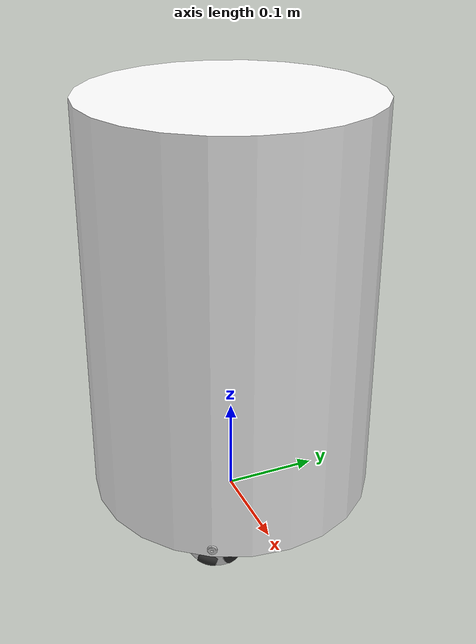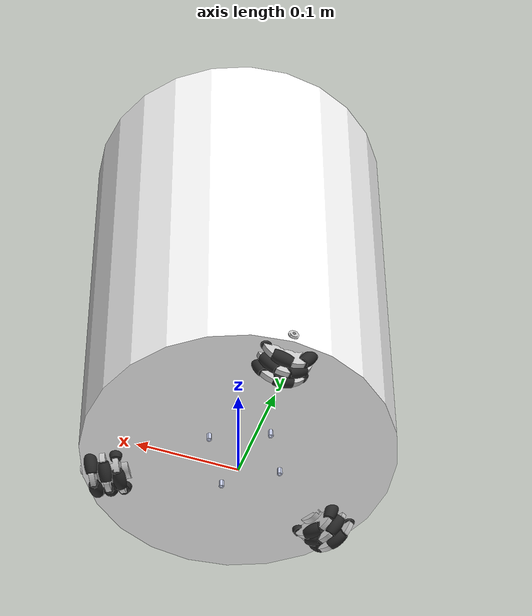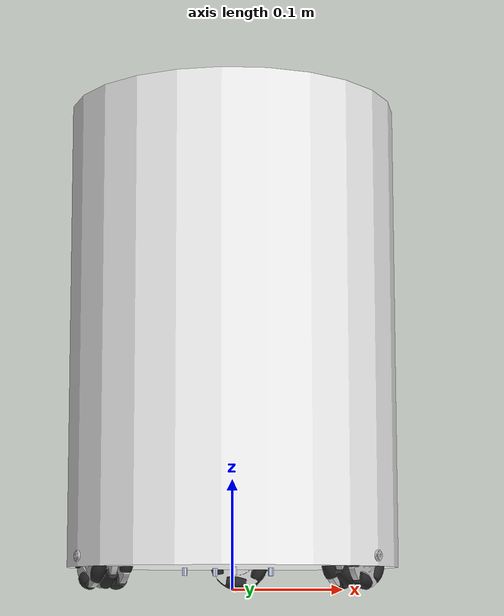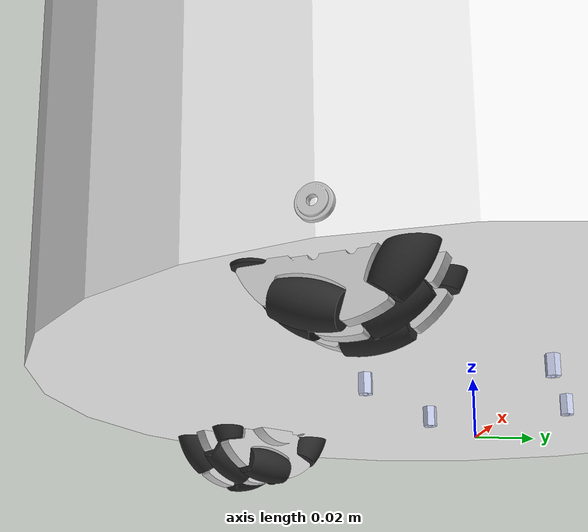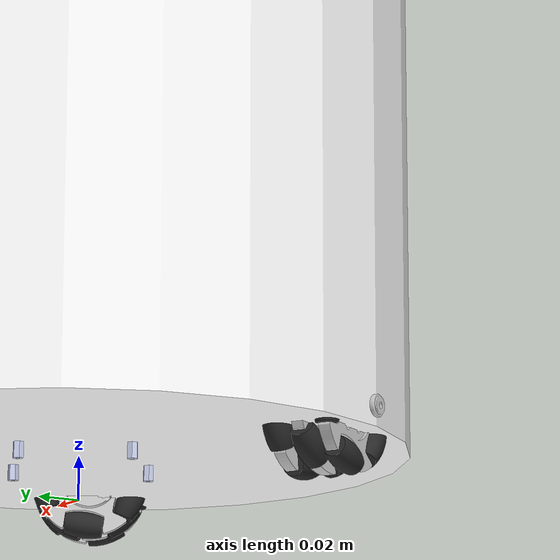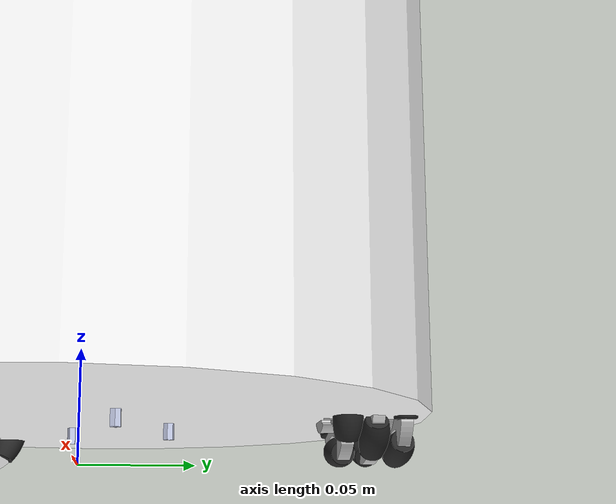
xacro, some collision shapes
<?xml version="1.0"?>
<robot xmlns:xacro="http://www.ros.org/wiki/xacro"  name="robot">

    <!-- Include all the contents. -->
    <xacro:include filename="$(find robot_description)/urdf/meshes/standard_inertia_util.xacro" />
    <xacro:include filename="$(find robot_description)/urdf/HARP2_urdf/holonomic_wheel/wheel.xacro" />

    <xacro:arg name="use_TopicBasedSystem_hardware_interface" default="false"/>
    <xacro:arg name="use_controller" default="false"/>

    <!-- Hhardware interfaces chosen according to whether the robot is simulated or real -->
    <xacro:if value="$(arg use_controller)">
        <xacro:if value="$(arg use_TopicBasedSystem_hardware_interface)">
            <xacro:include filename="$(find robot_controller)/urdf/TopicBasedSystem_hardware_interface.urdf.xacro"/>
        </xacro:if>
        <xacro:unless value="$(arg use_TopicBasedSystem_hardware_interface)">
            <xacro:include filename="$(find robot_controller)/urdf/GazeboSystem_hardware_interface.urdf.xacro"/>
        </xacro:unless>
    </xacro:if>

    <!-- This first link called "base_footprint" is empty -->
    <link name="base_footprint"/>

    <joint name="base_joint" type="fixed">
        <origin xyz="0 0 0" rpy="0 0 0.523599"/>
        <parent link="base_footprint"/>
        <child link="base_link"/>
    </joint>

    <xacro:property name="length" value="0.42235" />
    <xacro:property name="radius" value="0.15" />
    <xacro:property name="mass" value="3.0" />

    <link name="base_link">
        <visual>
            <origin xyz="0 0 0" rpy="0 0 0"/>
            <geometry>
                <mesh filename="file://$(find robot_description)/urdf/HARP2_urdf/meshes/HARP2_body.dae"/>
            </geometry>
            <cast_shadow>false</cast_shadow>
            <material name="robot_base_material">
                <color rgba="1 1 1 1.0"/>
            </material>
	    </visual>
        <collision>
            <origin xyz="0 0 0.231175" rpy="0 0 0" />
            <geometry>
                <cylinder radius="${radius}" length="${length}"/>
            </geometry>
            <surface>
                <contact>
                    <ode>
                        <min_depth>0.001</min_depth>
                    </ode>
                </contact>
            </surface>
        </collision>
	    <xacro:inertial_cylinder mass="${mass}" length="${length}" radius="${radius}">
            <origin xyz="0 0 0.0765" rpy="0 0 0" />
        </xacro:inertial_cylinder>
    </link>
    <gazebo reference="base_link">
        <mu1>1.0</mu1>
        <mu2>0.8</mu2>
        <kp>500000.0</kp>
        <kd>10.0</kd>
        <min_depth>0.1</min_depth>
        <maxVel>0.1</maxVel>
    </gazebo>

    <!-- Add the 3 holonomic wheel -->
    <xacro:holonomic_wheel joint_wheel_xyz="-0.10449143 0.0001469 0.02881000" joint_wheel_rpy="3.14159265 1.57079633 0" name_roueholonome="roueholonome1">
    </xacro:holonomic_wheel>

    <xacro:holonomic_wheel joint_wheel_xyz="0.05225842 0.09048483 0.02881000" joint_wheel_rpy="-1.04719755 1.57079633 0" name_roueholonome="roueholonome2">
    </xacro:holonomic_wheel>

    <xacro:holonomic_wheel joint_wheel_xyz="0.05223294 -0.09049959 0.02881000" joint_wheel_rpy="1.04719755 1.57079633 0" name_roueholonome="roueholonome3">
    </xacro:holonomic_wheel>

    <!-- Add YDlidar_X4 -->
    <xacro:include filename="$(find robot_description)/urdf/HARP2_urdf/lidar/YDlidar_X4/lidar.xacro" />

</robot>

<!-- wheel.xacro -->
<robot xmlns:xacro="http://www.ros.org/wiki/xacro">

    <xacro:macro name="holonomic_wheel" params="joint_wheel_xyz  joint_wheel_rpy name_roueholonome">

        <link name="${name_roueholonome}">
            <visual>
                <origin xyz="0 0 0" rpy="0 -0 0" />
                <geometry>
                    <mesh filename="file://$(find robot_description)/urdf/HARP2_urdf/holonomic_wheel/meshes/roueholonome.stl"/>
                </geometry>
                <material name="roueholonome_material">
                    <color rgba="0.80000000000000004441 0.80000000000000004441 0.80000000000000004441 1.0"/>
                </material>
            </visual>
            <collision>
                <origin xyz="0 0 0" rpy="0 -0 0" />
                <geometry>
                    <mesh filename="file://$(find robot_description)/urdf/HARP2_urdf/holonomic_wheel/meshes/roueholonome.stl"/>
                </geometry>
            </collision>
            <inertial>
                <origin xyz="1.2345961376214179597e-05 5.8083521185160058445e-05 0.019468669120375474424" rpy="0 0 0"/>
                <mass value="0.03844561768796746215" />
                <inertia ixx="8.6391130222776277764e-06" ixy="4.1009017309208888305e-09" ixz="5.7124620576176396146e-09" iyy="8.6575346053426999713e-06" iyz="2.6875192958562806848e-08" izz="8.5983534046061550705e-06" />
            </inertial>
        </link>
		<gazebo reference="${name_roueholonome}">
			<material>Gazebo/Grey</material>
			<mu1>100.0</mu1>
    		<mu2>100.8</mu2>
			<kp>500000.0</kp>
    		<kd>10.0</kd>
			<min_depth>0.1</min_depth>
			<maxVel>0.1</maxVel>
		</gazebo>

        <link name="rouleau_0_${name_roueholonome}">
            <visual>
                <origin xyz="0 0 -3.0930150658287577608e-18" rpy="1.6328812496752814116e-17 -0 0" />
                <geometry>
                    <mesh filename="file://$(find robot_description)/urdf/HARP2_urdf/holonomic_wheel/meshes/rouleau.stl"/>
                </geometry>
                <material name="rouleau_material">
                    <color rgba="0.16078431372549020772 0.16078431372549020772 0.16078431372549020772 1.0"/>
                </material>
            </visual>
            <collision>
                <origin xyz="0 0 -3.0930150658287577608e-18" rpy="1.6328812496752814116e-17 -0 0" />
                <geometry>
                    <mesh filename="file://$(find robot_description)/urdf/HARP2_urdf/holonomic_wheel/meshes/rouleau.stl"/>
                </geometry>
            </collision>
            <inertial>
                <origin xyz="-4.1636449553192852066e-36 1.3533020587657671574e-19 6.3088730355216916597e-17" rpy="0 0 0"/>
                <mass value="0.0023432187849480503455" />
                <inertia ixx="8.1170103340490589996e-08" ixy="0" ixz="0" iyy="8.1170103340490589996e-08" iyz="-1.3431533528159207934e-24" izz="4.3364299454179856849e-08" />
            </inertial>
        </link>
		<gazebo reference="rouleau_0_${name_roueholonome}">
			<material>Gazebo/Black</material>
			<mu1>100.0</mu1>
    		<mu2>100.8</mu2>
			<kp>500000.0</kp>
    		<kd>10.0</kd>
			<min_depth>0.1</min_depth>
			<maxVel>0.1</maxVel>
		</gazebo>

        <joint name="Rouleau_a_${name_roueholonome}" type="continuous">
            <origin xyz="-0.013420475016290707784 0.01780957187405463743 0.033325000000000062905" rpy="-0.64577182323790327523 1.5707963267948941155 0" />
            <parent link="${name_roueholonome}" />
            <child link="rouleau_0_${name_roueholonome}" />
            <axis xyz="0 0 1"/>
            <limit effort="1" velocity="20" />
            <joint_properties friction="10000.0"/>
        </joint>

        <link name="rouleau_2_${name_roueholonome}">
            <visual>
                <origin xyz="-3.4694469519536141888e-18 0 -3.4303132193351734043e-18" rpy="0 5.2889516682960319527e-17 0" />
                <geometry>
                    <mesh filename="file://$(find robot_description)/urdf/HARP2_urdf/holonomic_wheel/meshes/rouleau.stl"/>
                </geometry>
                <material name="rouleau_material">
                    <color rgba="0.16078431372549020772 0.16078431372549020772 0.16078431372549020772 1.0"/>
                </material>
            </visual>
            <collision>
                <origin xyz="-3.4694469519536141888e-18 0 -3.4303132193351734043e-18" rpy="0 5.2889516682960319527e-17 0" />
                <geometry>
                    <mesh filename="file://$(find robot_description)/urdf/HARP2_urdf/holonomic_wheel/meshes/rouleau.stl"/>
                </geometry>
            </collision>
            <inertial>
                <origin xyz="-3.4694469519536149592e-18 1.3533020587658078427e-19 6.2751432201710500954e-17" rpy="0 0 0"/>
                <mass value="0.0023432187849480503455" />
                <inertia ixx="8.1170103340490616466e-08" ixy="0" ixz="-5.0191476286347619465e-24" iyy="8.1170103340490589996e-08" iyz="0" izz="4.3364299454179856849e-08" />
            </inertial>
        </link>
		<gazebo reference="rouleau_2_${name_roueholonome}">
			<material>Gazebo/Black</material>
			<mu1>100.0</mu1>
    		<mu2>100.8</mu2>
			<kp>500000.0</kp>
    		<kd>10.0</kd>
			<min_depth>0.1</min_depth>
			<maxVel>0.1</maxVel>
		</gazebo>

        <joint name="Rouleau_b_${name_roueholonome}" type="continuous">
            <origin xyz="-0.021085064235864696414 -0.0072601698443945615613 0.03332500000000003515" rpy="-1.5707963267948956698 -3.1417578441620903761e-16 0.33161255787892368607" />
            <parent link="${name_roueholonome}" />
            <child link="rouleau_2_${name_roueholonome}" />
            <axis xyz="0 0 1"/>
            <limit effort="1" velocity="20" />
            <joint_properties friction="10000.0"/>
        </joint>

        <link name="rouleau_3_${name_roueholonome}">
            <visual>
                <origin xyz="0 0 -3.2818071290114697205e-18" rpy="3.9747098187420817097e-19 2.5137490391159056275e-32 -1.1680412449543689587e-31" />
                <geometry>
                    <mesh filename="file://$(find robot_description)/urdf/HARP2_urdf/holonomic_wheel/meshes/rouleau.stl"/>
                </geometry>
                <material name="rouleau_material">
                    <color rgba="0.16078431372549020772 0.16078431372549020772 0.16078431372549020772 1.0"/>
                </material>
            </visual>
            <collision>
                <origin xyz="0 0 -3.2818071290114697205e-18" rpy="3.9747098187420817097e-19 2.5137490391159056275e-32 -1.1680412449543689587e-31" />
                <geometry>
                    <mesh filename="file://$(find robot_description)/urdf/HARP2_urdf/holonomic_wheel/meshes/rouleau.stl"/>
                </geometry>
            </collision>
            <inertial>
                <origin xyz="-4.1636449553306578204e-36 1.3533020587658080834e-19 6.2899938292034204638e-17" rpy="0 0 0"/>
                <mass value="0.0023432187849480503455" />
                <inertia ixx="8.1170103340490589996e-08" ixy="2.2838269043937083388e-52" ixz="-9.502443162347014947e-39" iyy="8.1170103340490589996e-08" iyz="4.9498811355915796748e-26" izz="4.3364299454179856849e-08" />
            </inertial>
        </link>
		<gazebo reference="rouleau_3_${name_roueholonome}">
			<material>Gazebo/Black</material>
			<mu1>100.0</mu1>
    		<mu2>100.8</mu2>
			<kp>500000.0</kp>
    		<kd>10.0</kd>
			<min_depth>0.1</min_depth>
			<maxVel>0.1</maxVel>
		</gazebo>

        <joint name="Rouleau_c_${name_roueholonome}" type="continuous">
            <origin xyz="0.00038918866355149348392 -0.02229660360198754826 0.033325000000000042089" rpy="-0.017453292519944572231 1.5707963267948392705 0" />
            <parent link="${name_roueholonome}" />
            <child link="rouleau_3_${name_roueholonome}" />
            <axis xyz="0 0 1"/>
            <limit effort="1" velocity="20" />
            <joint_properties friction="10000.0"/>
        </joint>

        <link name="rouleau_4_${name_roueholonome}">
            <visual>
                <origin xyz="0 0 -3.7936842187680065164e-18" rpy="0 1.1457193178364117436e-17 0" />
                <geometry>
                    <mesh filename="file://$(find robot_description)/urdf/HARP2_urdf/holonomic_wheel/meshes/rouleau.stl"/>
                </geometry>
                <material name="rouleau_material">
                    <color rgba="0.16078431372549020772 0.16078431372549020772 0.16078431372549020772 1.0"/>
                </material>
            </visual>
            <collision>
                <origin xyz="0 0 -3.7936842187680065164e-18" rpy="0 1.1457193178364117436e-17 0" />
                <geometry>
                    <mesh filename="file://$(find robot_description)/urdf/HARP2_urdf/holonomic_wheel/meshes/rouleau.stl"/>
                </geometry>
            </collision>
            <inertial>
                <origin xyz="-7.6242068712555452973e-34 1.3533020587658078427e-19 6.2388061202277667842e-17" rpy="0 0 0"/>
                <mass value="0.0023432187849480503455" />
                <inertia ixx="8.1170103340490589996e-08" ixy="8.0039901497578101316e-39" ixz="-1.4268147101707474409e-24" iyy="8.1170103340490589996e-08" iyz="8.5521001304248375049e-39" izz="4.3364299454179856849e-08" />
            </inertial>
        </link>
		<gazebo reference="rouleau_4_${name_roueholonome}">
			<material>Gazebo/Black</material>
			<mu1>100.0</mu1>
    		<mu2>100.8</mu2>
			<kp>500000.0</kp>
    		<kd>10.0</kd>
			<min_depth>0.1</min_depth>
			<maxVel>0.1</maxVel>
		</gazebo>

        <joint name="Rouleau_d_${name_roueholonome}" type="continuous">
            <origin xyz="0.021325596057975706316 -0.0065198890153169881956 0.033325000000000049027" rpy="-1.5707963267948950037 4.6817282506571147944e-16 -0.29670597283903521468" />
            <parent link="${name_roueholonome}" />
            <child link="rouleau_4_${name_roueholonome}" />
            <axis xyz="0 0 1"/>
            <limit effort="1" velocity="20" />
            <joint_properties friction="10000.0"/>
        </joint>

        <link name="rouleau_5_${name_roueholonome}">
            <visual>
                <origin xyz="0 3.4694469519536141888e-18 -5.1334533855142423561e-18" rpy="1.4775655823719441705e-17 -6.2815500895366350825e-33 -7.2179616202439049587e-33" />
                <geometry>
                    <mesh filename="file://$(find robot_description)/urdf/HARP2_urdf/holonomic_wheel/meshes/rouleau.stl"/>
                </geometry>
                <material name="rouleau_material">
                    <color rgba="0.16078431372549020772 0.16078431372549020772 0.16078431372549020772 1.0"/>
                </material>
            </visual>
            <collision>
                <origin xyz="0 3.4694469519536141888e-18 -5.1334533855142423561e-18" rpy="1.4775655823719441705e-17 -6.2815500895366350825e-33 -7.2179616202439049587e-33" />
                <geometry>
                    <mesh filename="file://$(find robot_description)/urdf/HARP2_urdf/holonomic_wheel/meshes/rouleau.stl"/>
                </geometry>
            </collision>
            <inertial>
                <origin xyz="-4.163644955319293893e-36 3.6047771578301899897e-18 6.1048292035531432002e-17" rpy="0 0 0"/>
                <mass value="0.0023432187849480503455" />
                <inertia ixx="8.1170103340490589996e-08" ixy="-1.0004987687197264296e-39" ixz="5.0473217986283619396e-40" iyy="8.1170103340490589996e-08" iyz="-1.5872032362845766826e-24" izz="4.3364299454179856849e-08" />
            </inertial>
        </link>
		<gazebo reference="rouleau_5_${name_roueholonome}">
			<material>Gazebo/Black</material>
			<mu1>100.0</mu1>
    		<mu2>100.8</mu2>
			<kp>500000.0</kp>
    		<kd>10.0</kd>
			<min_depth>0.1</min_depth>
			<maxVel>0.1</maxVel>
		</gazebo>

        <joint name="Rouleau_e_${name_roueholonome}" type="continuous">
            <origin xyz="0.012790754530628296176 0.018267090587644554261 0.033325000000000090661" rpy="0.61086523819801497037 1.570796326794896558 0" />
            <parent link="${name_roueholonome}" />
            <child link="rouleau_5_${name_roueholonome}" />
            <axis xyz="0 0 1"/>
            <limit effort="1" velocity="20" />
            <joint_properties friction="10000.0"/>
        </joint>

        <link name="rouleau_6_${name_roueholonome}">
            <visual>
                <origin xyz="-3.4694469519536141888e-18 0 -4.113646662772658464e-18" rpy="0 8.1627970084569010276e-17 0" />
                <geometry>
                    <mesh filename="file://$(find robot_description)/urdf/HARP2_urdf/holonomic_wheel/meshes/rouleau.stl"/>
                </geometry>
                <material name="rouleau_material">
                    <color rgba="0.16078431372549020772 0.16078431372549020772 0.16078431372549020772 1.0"/>
                </material>
            </visual>
            <collision>
                <origin xyz="-3.4694469519536141888e-18 0 -4.113646662772658464e-18" rpy="0 8.1627970084569010276e-17 0" />
                <geometry>
                    <mesh filename="file://$(find robot_description)/urdf/HARP2_urdf/holonomic_wheel/meshes/rouleau.stl"/>
                </geometry>
            </collision>
            <inertial>
                <origin xyz="-3.4694469519536018629e-18 1.3533020587658078427e-19 6.2068098758273031302e-17" rpy="0 0 0"/>
                <mass value="0.0023432187849480503455" />
                <inertia ixx="8.1170103340490589996e-08" ixy="5.0024938435986329636e-40" ixz="1.182866047679964768e-24" iyy="8.1170103340490589996e-08" iyz="1.0690125163031048512e-39" izz="4.3364299454179870084e-08" />
            </inertial>
        </link>
		<gazebo reference="rouleau_6_${name_roueholonome}">
			<material>Gazebo/Black</material>
			<mu1>100.0</mu1>
    		<mu2>100.8</mu2>
			<kp>500000.0</kp>
    		<kd>10.0</kd>
			<min_depth>0.1</min_depth>
			<maxVel>0.1</maxVel>
		</gazebo>

        <joint name="Rouleau_f_${name_roueholonome}" type="continuous">
            <origin xyz="0.019114830805657331836 0.011485349070494411255 0.021074999999999954881" rpy="-1.570796326794896558 -4.9043767385674226062e-17 0.54105206811824368973" />
            <parent link="${name_roueholonome}" />
            <child link="rouleau_6_${name_roueholonome}" />
            <axis xyz="0 0 1"/>
            <limit effort="1" velocity="20" />
            <joint_properties friction="10000.0"/>
        </joint>

        <link name="rouleau_7_${name_roueholonome}">
            <visual>
                <origin xyz="0 0 -3.498296657825723703e-18" rpy="-3.389198516519853225e-18 -0 0" />
                <geometry>
                    <mesh filename="file://$(find robot_description)/urdf/HARP2_urdf/holonomic_wheel/meshes/rouleau.stl"/>
                </geometry>
                <material name="rouleau_material">
                    <color rgba="0.16078431372549020772 0.16078431372549020772 0.16078431372549020772 1.0"/>
                </material>
            </visual>
            <collision>
                <origin xyz="0 0 -3.498296657825723703e-18" rpy="-3.389198516519853225e-18 -0 0" />
                <geometry>
                    <mesh filename="file://$(find robot_description)/urdf/HARP2_urdf/holonomic_wheel/meshes/rouleau.stl"/>
                </geometry>
            </collision>
            <inertial>
                <origin xyz="-4.1636449553323369848e-36 1.3533020587658051945e-19 6.2683448763219938329e-17" rpy="0 0 0"/>
                <mass value="0.0023432187849480503455" />
                <inertia ixx="8.1170103340490589996e-08" ixy="3.5068503374215154205e-56" ixz="-8.5521001304248361998e-39" iyy="8.1170103340490589996e-08" iyz="-4.5292003123307193684e-25" izz="4.3364299454179843614e-08" />
            </inertial>
        </link>
		<gazebo reference="rouleau_7_${name_roueholonome}">
			<material>Gazebo/Black</material>
			<mu1>100.0</mu1>
    		<mu2>100.8</mu2>
			<kp>500000.0</kp>
    		<kd>10.0</kd>
			<min_depth>0.1</min_depth>
			<maxVel>0.1</maxVel>
		</gazebo>

        <joint name="Rouleau_g_${name_roueholonome}" type="continuous">
            <origin xyz="-0.0050164085118679924147 0.021728452444710857211 0.021074999999999941003" rpy="-0.22689280275926387853 1.5707963267948932273 0" />
            <parent link="${name_roueholonome}" />
            <child link="rouleau_7_${name_roueholonome}" />
            <axis xyz="0 0 1"/>
            <limit effort="1" velocity="20" />
            <joint_properties friction="10000.0"/>
        </joint>

        <link name="rouleau_8_${name_roueholonome}">
            <visual>
                <origin xyz="3.4694469519536141888e-18 0 -3.1501452545943534117e-18" rpy="0 -9.4143971163664187238e-18 0" />
                <geometry>
                    <mesh filename="file://$(find robot_description)/urdf/HARP2_urdf/holonomic_wheel/meshes/rouleau.stl"/>
                </geometry>
                <material name="rouleau_material">
                    <color rgba="0.16078431372549020772 0.16078431372549020772 0.16078431372549020772 1.0"/>
                </material>
            </visual>
            <collision>
                <origin xyz="3.4694469519536141888e-18 0 -3.1501452545943534117e-18" rpy="0 -9.4143971163664187238e-18 0" />
                <geometry>
                    <mesh filename="file://$(find robot_description)/urdf/HARP2_urdf/holonomic_wheel/meshes/rouleau.stl"/>
                </geometry>
            </collision>
            <inertial>
                <origin xyz="3.4694469519536141888e-18 1.3533020587658078427e-19 6.3031600166451320947e-17" rpy="0 0 0"/>
                <mass value="0.0023432187849480503455" />
                <inertia ixx="8.1170103340490616466e-08" ixy="0" ixz="7.5281333379692518021e-25" iyy="8.1170103340490589996e-08" iyz="0" izz="4.3364299454179856849e-08" />
            </inertial>
        </link>
		<gazebo reference="rouleau_8_${name_roueholonome}">
			<material>Gazebo/Black</material>
			<mu1>100.0</mu1>
    		<mu2>100.8</mu2>
			<kp>500000.0</kp>
    		<kd>10.0</kd>
			<min_depth>0.1</min_depth>
			<maxVel>0.1</maxVel>
		</gazebo>

        <joint name="Rouleau_h_${name_roueholonome}" type="continuous">
            <origin xyz="-0.022215141767445704957 0.0019435730632728369285 0.021074999999999906308" rpy="-1.5707963267948961139 4.8838622353046982012e-17 -0.087266462599715891035" />
            <parent link="${name_roueholonome}" />
            <child link="rouleau_8_${name_roueholonome}" />
            <axis xyz="0 0 1"/>
            <limit effort="1" velocity="20" />
            <joint_properties friction="10000.0"/>
        </joint>

        <link name="rouleau_9_${name_roueholonome}">
            <visual>
                <origin xyz="0 0 -3.7825609954261960022e-18" rpy="5.4193505429179457753e-17 9.8607613152626475676e-32 0" />
                <geometry>
                    <mesh filename="file://$(find robot_description)/urdf/HARP2_urdf/holonomic_wheel/meshes/rouleau.stl"/>
                </geometry>
                <material name="rouleau_material">
                    <color rgba="0.16078431372549020772 0.16078431372549020772 0.16078431372549020772 1.0"/>
                </material>
            </visual>
            <collision>
                <origin xyz="0 0 -3.7825609954261960022e-18" rpy="5.4193505429179457753e-17 9.8607613152626475676e-32 0" />
                <geometry>
                    <mesh filename="file://$(find robot_description)/urdf/HARP2_urdf/holonomic_wheel/meshes/rouleau.stl"/>
                </geometry>
            </collision>
            <inertial>
                <origin xyz="-4.163644955316022429e-36 1.3533020587657681203e-19 6.2399184425619478356e-17" rpy="0 0 0"/>
                <mass value="0.0023432187849480503455" />
                <inertia ixx="8.1170103340490589996e-08" ixy="-1.2856873392799733584e-55" ixz="-5.8659651171516010817e-39" iyy="8.1170103340490589996e-08" iyz="1.7912087123193848539e-24" izz="4.3364299454179856849e-08" />
            </inertial>
        </link>
		<gazebo reference="rouleau_9_${name_roueholonome}">
			<material>Gazebo/Black</material>
			<mu1>100.0</mu1>
    		<mu2>100.8</mu2>
			<kp>500000.0</kp>
    		<kd>10.0</kd>
			<min_depth>0.1</min_depth>
			<maxVel>0.1</maxVel>
		</gazebo>

        <joint name="Rouleau_i_${name_roueholonome}" type="continuous">
            <origin xyz="-0.0087133041653105550162 -0.020527258231989323201 0.021074999999999920186" rpy="0.4014257279586944116 1.5707963267948954478 0" />
            <parent link="${name_roueholonome}" />
            <child link="rouleau_9_${name_roueholonome}" />
            <axis xyz="0 0 1"/>
            <limit effort="1" velocity="20" />
            <joint_properties friction="10000.0"/>
        </joint>

        <link name="rouleau_10_${name_roueholonome}">
            <visual>
                <origin xyz="-3.4694469519536141888e-18 0 -4.2694766912701180357e-18" rpy="0 -2.6055645275229619976e-18 -9.8607613152626475676e-32" />
                <geometry>
                    <mesh filename="file://$(find robot_description)/urdf/HARP2_urdf/holonomic_wheel/meshes/rouleau.stl"/>
                </geometry>
                <material name="rouleau_material">
                    <color rgba="0.16078431372549020772 0.16078431372549020772 0.16078431372549020772 1.0"/>
                </material>
            </visual>
            <collision>
                <origin xyz="-3.4694469519536141888e-18 0 -4.2694766912701180357e-18" rpy="0 -2.6055645275229619976e-18 -9.8607613152626475676e-32" />
                <geometry>
                    <mesh filename="file://$(find robot_description)/urdf/HARP2_urdf/holonomic_wheel/meshes/rouleau.stl"/>
                </geometry>
            </collision>
            <inertial>
                <origin xyz="-3.4694469519536134185e-18 1.3533020587658078427e-19 6.1912268729775556322e-17" rpy="0 0 0"/>
                <mass value="0.0023432187849480503455" />
                <inertia ixx="8.1170103340490589996e-08" ixy="-1.6007980299515620263e-38" ixz="7.9942606734118332814e-25" iyy="8.1170103340490589996e-08" iyz="4.2760500652124187525e-39" izz="4.3364299454179856849e-08" />
            </inertial>
        </link>
		<gazebo reference="rouleau_10_${name_roueholonome}">
			<material>Gazebo/Black</material>
			<mu1>100.0</mu1>
    		<mu2>100.8</mu2>
			<kp>500000.0</kp>
    		<kd>10.0</kd>
			<min_depth>0.1</min_depth>
			<maxVel>0.1</maxVel>
		</gazebo>

        <joint name="Rouleau_j_${name_roueholonome}" type="continuous">
            <origin xyz="0.016830023638968003019 -0.014630116346488147502 0.021074999999999961819" rpy="-1.5707963267948958919 7.1421411548152096475e-16 -0.71558499331767400076" />
            <parent link="${name_roueholonome}" />
            <child link="rouleau_10_${name_roueholonome}" />
            <axis xyz="0 0 1"/>
            <limit effort="1" velocity="20" />
            <joint_properties friction="10000.0"/>
        </joint>

        <link name="rouleau_11_${name_roueholonome}">
            <visual>
                <origin xyz="0 0 -3.5362776034089499733e-18" rpy="0 -9.2577948740125188586e-18 -1.368455531567203867e-48" />
                <geometry>
                    <mesh filename="file://$(find robot_description)/urdf/HARP2_urdf/holonomic_wheel/meshes/rouleau.stl"/>
                </geometry>
                <material name="rouleau_material">
                    <color rgba="0.16078431372549020772 0.16078431372549020772 0.16078431372549020772 1.0"/>
                </material>
            </visual>
            <collision>
                <origin xyz="0 0 -3.5362776034089499733e-18" rpy="0 -9.2577948740125188586e-18 -1.368455531567203867e-48" />
                <geometry>
                    <mesh filename="file://$(find robot_description)/urdf/HARP2_urdf/holonomic_wheel/meshes/rouleau.stl"/>
                </geometry>
            </collision>
            <inertial>
                <origin xyz="1.5431465330455382918e-33 1.3533020587658078427e-19 6.2645467817636712059e-17" rpy="0 0 0"/>
                <mass value="0.0023432187849480503455" />
                <inertia ixx="8.1170103340490616466e-08" ixy="-2.2215535382835192681e-55" ixz="1.7653010188678165801e-24" iyy="8.1170103340490589996e-08" iyz="4.7473692368487286907e-55" izz="4.3364299454179843614e-08" />
            </inertial>
        </link>
		<gazebo reference="rouleau_11_${name_roueholonome}">
			<material>Gazebo/Black</material>
			<mu1>100.0</mu1>
    		<mu2>100.8</mu2>
			<kp>500000.0</kp>
    		<kd>10.0</kd>
			<min_depth>0.1</min_depth>
			<maxVel>0.1</maxVel>
		</gazebo>

        <joint name="Rouleau_k_${name_roueholonome}" type="continuous">
            <origin xyz="0.022133779181601007796 0.002717686357935402211 0.0088249999999999856337" rpy="1.570796326794896558 1.0594055922300230704e-32 0.1221730476396042514" />
            <parent link="${name_roueholonome}" />
            <child link="rouleau_11_${name_roueholonome}" />
            <axis xyz="0 0 1"/>
            <limit effort="1" velocity="20" />
            <joint_properties friction="10000.0"/>
        </joint>

        <link name="rouleau_12_${name_roueholonome}">
            <visual>
                <origin xyz="0 0 -3.5868899049170104631e-18" rpy="-1.0347990611373122057e-17 -0 1.4012984643248170709e-45" />
                <geometry>
                    <mesh filename="file://$(find robot_description)/urdf/HARP2_urdf/holonomic_wheel/meshes/rouleau.stl"/>
                </geometry>
                <material name="rouleau_material">
                    <color rgba="0.16078431372549020772 0.16078431372549020772 0.16078431372549020772 1.0"/>
                </material>
            </visual>
            <collision>
                <origin xyz="0 0 -3.5868899049170104631e-18" rpy="-1.0347990611373122057e-17 -0 1.4012984643248170709e-45" />
                <geometry>
                    <mesh filename="file://$(find robot_description)/urdf/HARP2_urdf/holonomic_wheel/meshes/rouleau.stl"/>
                </geometry>
            </collision>
            <inertial>
                <origin xyz="-4.1636449553192852066e-36 1.3533020587657970093e-19 6.2594855516128651569e-17" rpy="0 0 0"/>
                <mass value="0.0023432187849480503455" />
                <inertia ixx="8.1170103340490589996e-08" ixy="1.1374354116011616798e-52" ixz="0" iyy="8.1170103340490589996e-08" iyz="-1.5515367201655790677e-24" izz="4.3364299454179843614e-08" />
            </inertial>
        </link>
		<gazebo reference="rouleau_12_${name_roueholonome}">
			<material>Gazebo/Black</material>
			<mu1>100.0</mu1>
    		<mu2>100.8</mu2>
			<kp>500000.0</kp>
    		<kd>10.0</kd>
			<min_depth>0.1</min_depth>
			<maxVel>0.1</maxVel>
		</gazebo>

        <joint name="Rouleau_l_${name_roueholonome}" type="continuous">
            <origin xyz="0.0042550405968964557374 0.021890286190883428974 0.0088249999999999856337" rpy="0.19198621771937532388 1.570796326794896558 0" />
            <parent link="${name_roueholonome}" />
            <child link="rouleau_12_${name_roueholonome}" />
            <axis xyz="0 0 1"/>
            <limit effort="1" velocity="20" />
            <joint_properties friction="10000.0"/>
        </joint>

        <link name="rouleau_13_${name_roueholonome}">
            <visual>
                <origin xyz="3.4694469519536141888e-18 0 -2.4387729003912535683e-18" rpy="0 1.6705076408613812658e-17 0" />
                <geometry>
                    <mesh filename="file://$(find robot_description)/urdf/HARP2_urdf/holonomic_wheel/meshes/rouleau.stl"/>
                </geometry>
                <material name="rouleau_material">
                    <color rgba="0.16078431372549020772 0.16078431372549020772 0.16078431372549020772 1.0"/>
                </material>
            </visual>
            <collision>
                <origin xyz="3.4694469519536141888e-18 0 -2.4387729003912535683e-18" rpy="0 1.6705076408613812658e-17 0" />
                <geometry>
                    <mesh filename="file://$(find robot_description)/urdf/HARP2_urdf/holonomic_wheel/meshes/rouleau.stl"/>
                </geometry>
            </collision>
            <inertial>
                <origin xyz="3.4694469519536195814e-18 1.3533020587658078427e-19 6.3742972520654408464e-17" rpy="0 0 0"/>
                <mass value="0.0023432187849480503455" />
                <inertia ixx="8.1170103340490589996e-08" ixy="-6.2349052187640093419e-70" ixz="2.2035488566905369753e-24" iyy="8.1170103340490589996e-08" iyz="-7.5957907789579659051e-54" izz="4.3364299454179843614e-08" />
            </inertial>
        </link>
		<gazebo reference="rouleau_13_${name_roueholonome}">
			<material>Gazebo/Black</material>
			<mu1>100.0</mu1>
    		<mu2>100.8</mu2>
			<kp>500000.0</kp>
    		<kd>10.0</kd>
			<min_depth>0.1</min_depth>
			<maxVel>0.1</maxVel>
		</gazebo>

        <joint name="Rouleau_m_${name_roueholonome}" type="continuous">
            <origin xyz="-0.019504019469209064874 0.010811254531493870792 0.0088249999999999786948" rpy="-1.570796326794896558 5.9783382435715084657e-31 -0.50614548307835438568" />
            <parent link="${name_roueholonome}" />
            <child link="rouleau_13_${name_roueholonome}" />
            <axis xyz="0 0 1"/>
            <limit effort="1" velocity="20" />
            <joint_properties friction="10000.0"/>
        </joint>

        <link name="rouleau_14_${name_roueholonome}">
            <visual>
                <origin xyz="0 0 -3.1178521529106991068e-18" rpy="0 -1.6409621240755411598e-17 0" />
                <geometry>
                    <mesh filename="file://$(find robot_description)/urdf/HARP2_urdf/holonomic_wheel/meshes/rouleau.stl"/>
                </geometry>
                <material name="rouleau_material">
                    <color rgba="0.16078431372549020772 0.16078431372549020772 0.16078431372549020772 1.0"/>
                </material>
            </visual>
            <collision>
                <origin xyz="0 0 -3.1178521529106991068e-18" rpy="0 -1.6409621240755411598e-17 0" />
                <geometry>
                    <mesh filename="file://$(find robot_description)/urdf/HARP2_urdf/holonomic_wheel/meshes/rouleau.stl"/>
                </geometry>
            </collision>
            <inertial>
                <origin xyz="-6.2657960271764045994e-33 1.3533020587658078427e-19 6.3063893268134975251e-17" rpy="0 0 0"/>
                <mass value="0.0023432187849480503455" />
                <inertia ixx="8.1170103340490589996e-08" ixy="-1.4217942645014520998e-53" ixz="-2.7708419887728443482e-24" iyy="8.1170103340490589996e-08" iyz="0" izz="4.3364299454179856849e-08" />
            </inertial>
        </link>
		<gazebo reference="rouleau_14_${name_roueholonome}">
			<material>Gazebo/Black</material>
			<mu1>100.0</mu1>
    		<mu2>100.8</mu2>
			<kp>500000.0</kp>
    		<kd>10.0</kd>
			<min_depth>0.1</min_depth>
			<maxVel>0.1</maxVel>
		</gazebo>

        <joint name="Rouleau_n_${name_roueholonome}" type="continuous">
            <origin xyz="-0.016309187546107956762 -0.015208563429393149105 0.0088249999999999717559" rpy="1.570796326794896558 1.1436665179810820258e-30 0.75049157835756241663" />
            <parent link="${name_roueholonome}" />
            <child link="rouleau_14_${name_roueholonome}" />
            <axis xyz="0 0 1"/>
            <limit effort="1" velocity="20" />
            <joint_properties friction="10000.0"/>
        </joint>

        <link name="rouleau_15_${name_roueholonome}">
            <visual>
                <origin xyz="0 3.4694469519536141888e-18 -3.2874178854571565963e-18" rpy="-1.8345763277748644265e-17 -3.5032461608120426773e-46 0" />
                <geometry>
                    <mesh filename="file://$(find robot_description)/urdf/HARP2_urdf/holonomic_wheel/meshes/rouleau.stl"/>
                </geometry>
                <material name="rouleau_material">
                    <color rgba="0.16078431372549020772 0.16078431372549020772 0.16078431372549020772 1.0"/>
                </material>
            </visual>
            <collision>
                <origin xyz="0 3.4694469519536141888e-18 -3.2874178854571565963e-18" rpy="-1.8345763277748644265e-17 -3.5032461608120426773e-46 0" />
                <geometry>
                    <mesh filename="file://$(find robot_description)/urdf/HARP2_urdf/holonomic_wheel/meshes/rouleau.stl"/>
                </geometry>
            </collision>
            <inertial>
                <origin xyz="-4.1636449553192852066e-36 3.6047771578301930712e-18 6.2894327535588517762e-17" rpy="0 0 0"/>
                <mass value="0.0023432187849480503455" />
                <inertia ixx="8.1170103340490589996e-08" ixy="-2.7870115907613766886e-70" ixz="4.3627466847944978442e-53" iyy="8.1170103340490589996e-08" iyz="-2.2846786736068231429e-24" izz="4.3364299454179856849e-08" />
            </inertial>
        </link>
		<gazebo reference="rouleau_15_${name_roueholonome}">
			<material>Gazebo/Black</material>
			<mu1>100.0</mu1>
    		<mu2>100.8</mu2>
			<kp>500000.0</kp>
    		<kd>10.0</kd>
			<min_depth>0.1</min_depth>
			<maxVel>0.1</maxVel>
		</gazebo>

        <joint name="Rouleau_o_${name_roueholonome}" type="continuous">
            <origin xyz="0.0094243872368171555109 -0.020210663650916695783 0.0088249999999999786948" rpy="-0.43633231299858277197 1.570796326794896558 0" />
            <parent link="${name_roueholonome}" />
            <child link="rouleau_15_${name_roueholonome}" />
            <axis xyz="0 0 1"/>
            <limit effort="1" velocity="20" />
            <joint_properties friction="10000.0"/>
        </joint>

        <joint name="joint_wheel_${name_roueholonome}" type="continuous">
            <origin xyz="${joint_wheel_xyz}" rpy="${joint_wheel_rpy}" />
            <parent link="base_link" />
            <child link="${name_roueholonome}" />
            <axis xyz="0 0 1"/>
            <limit effort="1" velocity="20" />
            <joint_properties friction="10000.0"/>
        </joint>

    </xacro:macro>

</robot>

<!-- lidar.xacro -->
<robot xmlns:xacro="http://www.ros.org/wiki/xacro" >

    <joint name="laser_joint" type="fixed">
        <parent link="base_link"/>
        <child link="ydlidarx4_laser_frame"/>
        <origin xyz="0 0 0.059" rpy="0 0 -1.02974"/>
    </joint>

    <link name="ydlidarx4_laser_frame">
        <visual>
            <origin xyz="0.14618951398576332523 0.14013748441688259061 -0.032534567993216335913" rpy="0.0070131046609522990076 -0.0043951746943098691026 1.0588559938320413748e-20" />
            <geometry>
                <mesh filename="file://$(find robot_description)/urdf/HARP2_urdf/lidar/YDlidar_X4/meshes/YDLidarX4.dae"/>
            </geometry>
            <cast_shadow>false</cast_shadow>
        </visual>
        <collision>
            <origin xyz="0.14618951398576332523 0.14013748441688259061 -0.032534567993216335913" rpy="0.0070131046609522990076 -0.0043951746943098691026 1.0588559938320413748e-20" />
            <geometry>
                <mesh filename="file://$(find robot_description)/urdf/HARP2_urdf/lidar/YDlidar_X4/meshes/YDLidarX4.dae"/>
            </geometry>
        </collision>
        <inertial>
            <origin xyz="-0.0086009941406221535054 0.00011298993473073847471 -0.0076526351124166051842" rpy="0 0 0"/>
            <mass value="0.14752655941234493753" />
            <inertia ixx="6.0489990249921805519e-05" ixy="6.49244014726941633e-07"  ixz="-2.0768494329416872714e-05" iyy="0.00010990306661424009238" iyz="2.7283250986639107559e-07" izz="0.00012710683473264090424" />
        </inertial>
    </link>

    <gazebo reference="ydlidarx4_laser_frame">

        <sensor name="laser" type="gpu_ray">
            <always_on>true</always_on>
            <pose> 0 0 0 0 0 0 </pose>
            <visualize>false</visualize>
            <update_rate>15</update_rate>
            <ray>
                <scan>
                    <horizontal>
                        <samples>360</samples>
                        <resolution>1</resolution>
                        <min_angle>-3.14</min_angle>
                        <max_angle>3.14</max_angle>
                    </horizontal>
                </scan>
                <range>
                    <min>0.162475</min>
                    <max>10</max>
                    <resolution>0.01</resolution>
                </range>
                <noise>
                    <type>gaussian</type>
                    <mean>0.0</mean>
                    <stddev>0.0005</stddev>
                </noise>
            </ray>
            <plugin name="laser_controller" filename="libgazebo_ros_ray_sensor.so">
                <ros>
                    <remapping>~/out:=/scan</remapping>
                </ros>
                <output_type>sensor_msgs/LaserScan</output_type>
                <frame_name>ydlidarx4_laser_frame</frame_name>
            </plugin>
        </sensor>
    </gazebo>
</robot>
